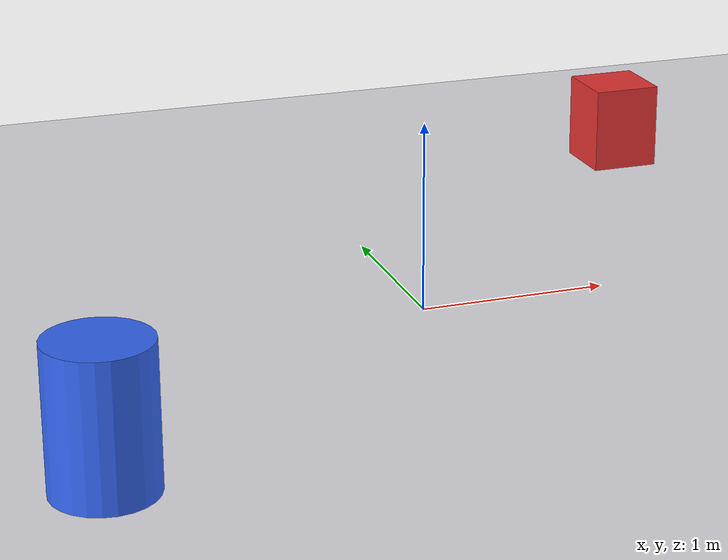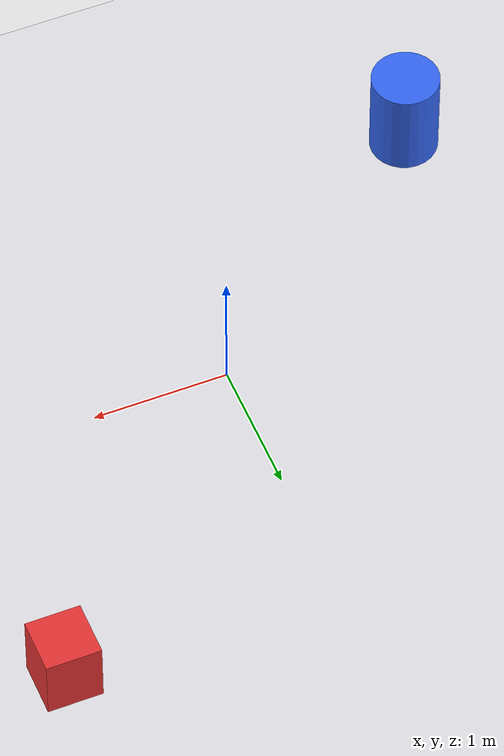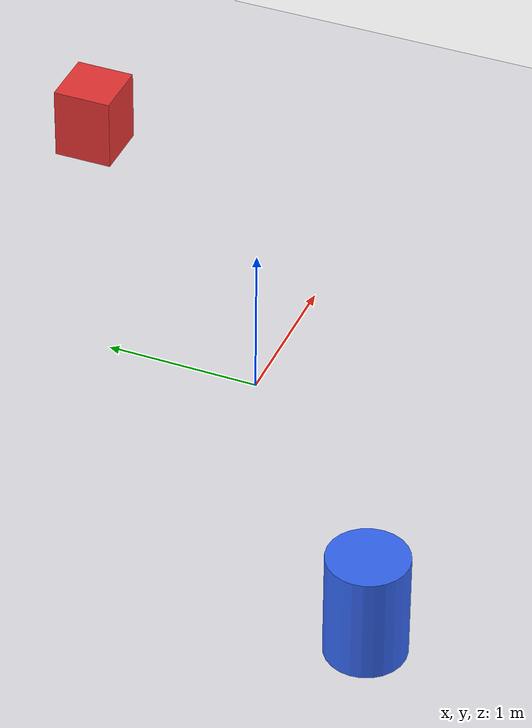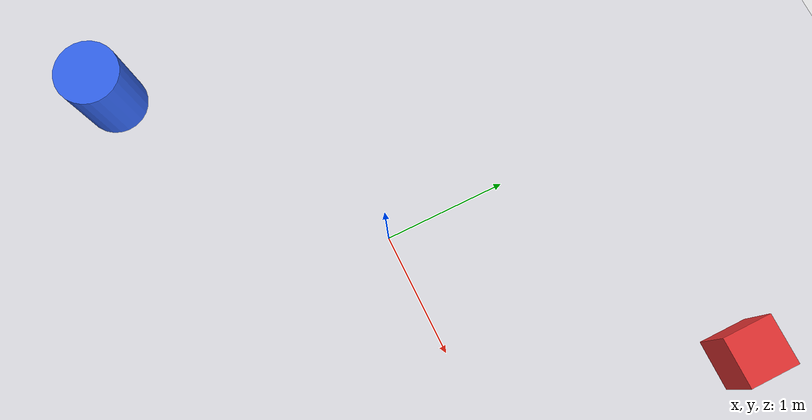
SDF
<?xml version="1.0" ?>
<sdf version="1.8">
  <world name="empty">

    <!-- Systems -->
    <plugin filename="gz-sim-physics-system" name="gz::sim::systems::Physics"/>
    <plugin filename="gz-sim-user-commands-system" name="gz::sim::systems::UserCommands"/>
    <plugin filename="gz-sim-scene-broadcaster-system" name="gz::sim::systems::SceneBroadcaster"/>
    <plugin filename="gz-sim-sensors-system" name="gz::sim::systems::Sensors"/>

    <!-- Physics: stable + less tunneling -->
    <physics name="default" type="ignored">
      <max_step_size>0.001</max_step_size>
      <real_time_factor>1.0</real_time_factor>
    </physics>

    <!-- Lighting -->
    <light name="sun" type="directional">
      <pose>0 0 10 0 0 0</pose>
      <cast_shadows>true</cast_shadows>
      <diffuse>1 1 1 1</diffuse>
      <specular>0.2 0.2 0.2 1</specular>
      <direction>-0.3 0.3 -1</direction>
    </light>

    <!-- Ground plane (not black) -->
    <model name="ground_plane">
      <static>true</static>
      <link name="link">
        <collision name="collision">
          <geometry>
            <plane><normal>0 0 1</normal><size>60 60</size></plane>
          </geometry>
        </collision>
        <visual name="visual">
          <geometry>
            <plane><normal>0 0 1</normal><size>60 60</size></plane>
          </geometry>
          <material>
            <ambient>0.88 0.88 0.90 1</ambient>
            <diffuse>0.88 0.88 0.90 1</diffuse>
          </material>
        </visual>
      </link>
    </model>

    <!-- A couple of colored “landmarks” for easy screenshots -->
    <model name="landmark_red">
      <static>true</static>
      <pose>2 2 0.25 0 0 0</pose>
      <link name="link">
        <collision name="c"><geometry><box><size>0.4 0.4 0.5</size></box></geometry></collision>
        <visual name="v">
          <geometry><box><size>0.4 0.4 0.5</size></box></geometry>
          <material><ambient>0.9 0.2 0.2 1</ambient><diffuse>0.9 0.2 0.2 1</diffuse></material>
        </visual>
      </link>
    </model>

    <model name="landmark_blue">
      <static>true</static>
      <pose>-2 -1.5 0.35 0 0 0</pose>
      <link name="link">
        <collision name="c"><geometry><cylinder><radius>0.25</radius><length>0.7</length></cylinder></geometry></collision>
        <visual name="v">
          <geometry><cylinder><radius>0.25</radius><length>0.7</length></cylinder></geometry>
          <material><ambient>0.2 0.4 0.95 1</ambient><diffuse>0.2 0.4 0.95 1</diffuse></material>
        </visual>
      </link>
    </model>

  </world>
</sdf>
